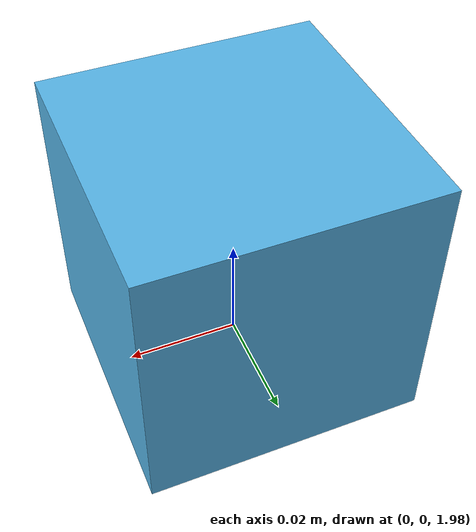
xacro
<?xml version="1.0" encoding="UTF-8"?>

<robot name="roly_v2" xmlns:xacro="http://www.ros.org/wiki/xacro">
<xacro:property name="camera_link" value="0.05" /> <!-- Size of square 'camera' box -->

  <link name="world"> </link>

<joint name="camera_joint" type="fixed">
    <axis xyz="0 0 0" />
    <origin xyz="0 0 2"  rpy="0 1.57 0"/>
    <parent link="world"/>
    <child link="camera_link"/>
  </joint>

  <!-- Camera -->
  <link name="camera_link">
    <collision>
      <origin xyz="0 0 0" rpy="0 0 0"/>
      <geometry>
    <box size="0.05 0.05 0.05"/>
      </geometry>
    </collision>

    <visual>
      <origin xyz="0 0 0" rpy="0 0 0"/>
      <geometry>
    <box size="0.05 0.05 0.05"/>
      </geometry>

    </visual>

    <inertial>
      <mass value="1e-5" />
      <origin xyz="0 0 0" rpy="0 0 0"/>
      <inertia ixx="1e-6" ixy="0" ixz="0" iyy="1e-6" iyz="0" izz="1e-6" />
    </inertial>
  </link>
  <!-- camera -->
  <gazebo reference="camera_link">
    <sensor type="camera" name="camera1">
      <update_rate>30.0</update_rate>
      <camera name="head">
        <horizontal_fov>1.3962634</horizontal_fov>
        <image>
          <width>800</width>
          <height>800</height>
          <format>R8G8B8</format>
        </image>
        <clip>
          <near>0.02</near>
          <far>300</far>
        </clip>
        <noise>
          <type>gaussian</type>
          <!-- Noise is sampled independently per pixel on each frame.
               That pixel's noise value is added to each of its color
               channels, which at that point lie in the range [0,1]. -->
          <mean>0.0</mean>
          <stddev>0.007</stddev>
        </noise>
      </camera>
      <plugin name="camera_controller" filename="libgazebo_ros_camera.so">
        <alwaysOn>true</alwaysOn>
        <updateRate>0.0</updateRate>
        <cameraName>camera/camera1</cameraName>
        <imageTopicName>image_raw</imageTopicName>
        <cameraInfoTopicName>camera_info</cameraInfoTopicName>
        <frameName>camera_link</frameName>
        <hackBaseline>0.07</hackBaseline>
        <distortionK1>0.0</distortionK1>
        <distortionK2>0.0</distortionK2>
        <distortionK3>0.0</distortionK3>
        <distortionT1>0.0</distortionT1>
        <distortionT2>0.0</distortionT2>
      </plugin>
    </sensor>
  </gazebo>
</robot>
